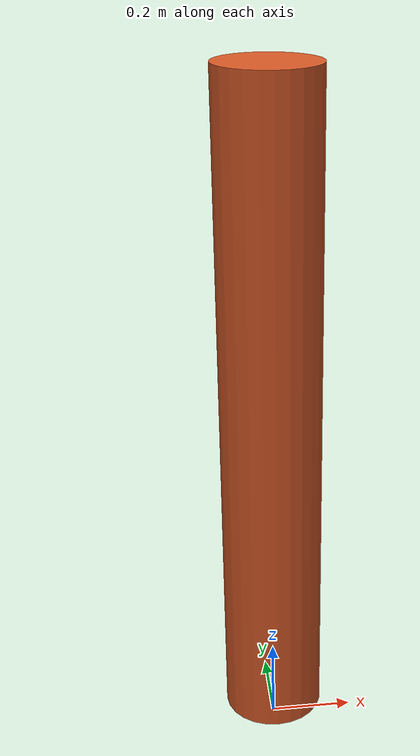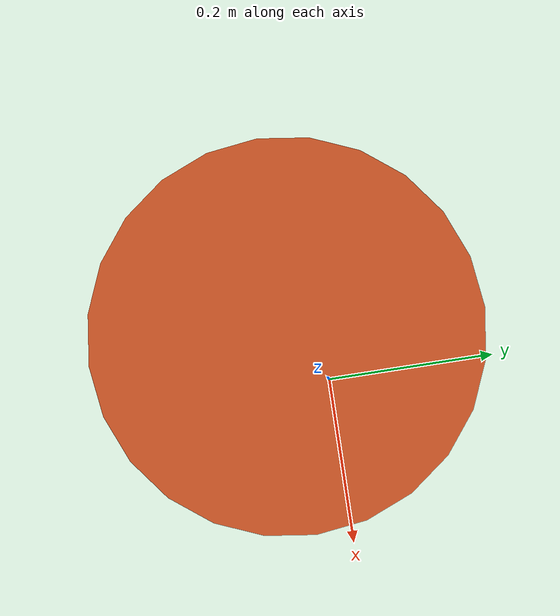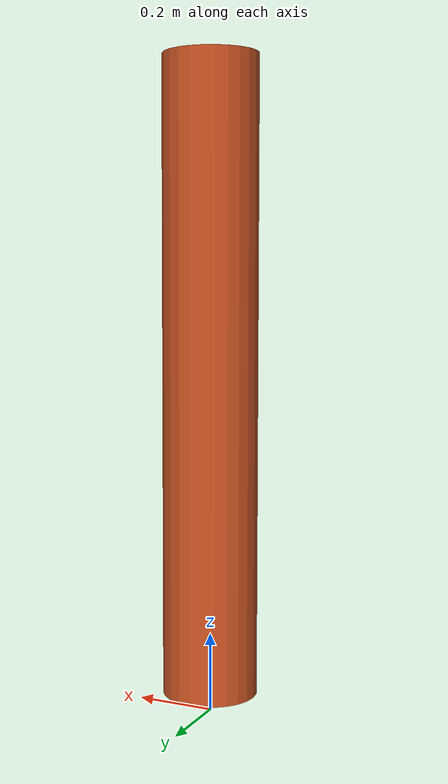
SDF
<?xml version="1.0" ?>
<sdf version="1.8">
  <model name="person">
    <static>true</static>
    <pose>0 0 0.85 0 0 0</pose>
    <link name="body">
      <visual name="visual">
        <geometry>
          <cylinder>
            <radius>0.12</radius>
            <length>1.6</length>
          </cylinder>
        </geometry>
        <material>
          <ambient>0.85 0.35 0.15 1</ambient>
          <diffuse>0.85 0.35 0.15 1</diffuse>
          <specular>0.2 0.2 0.2 1</specular>
        </material>
      </visual>
    </link>
  </model>
</sdf>
